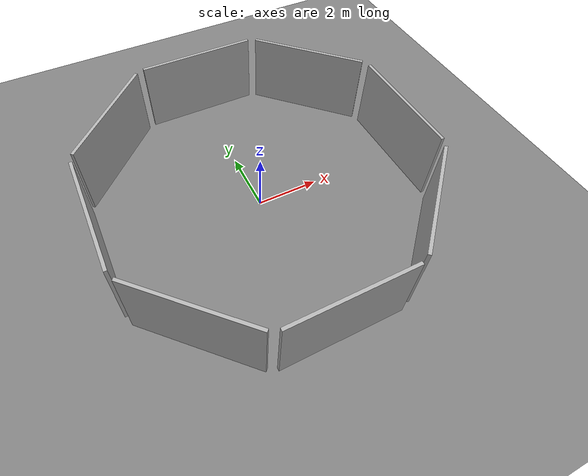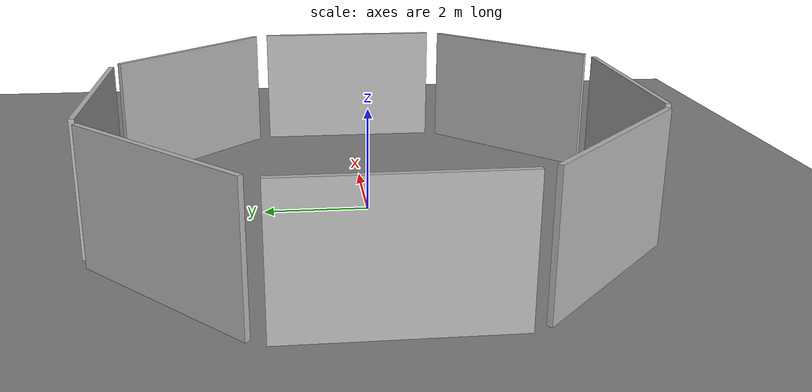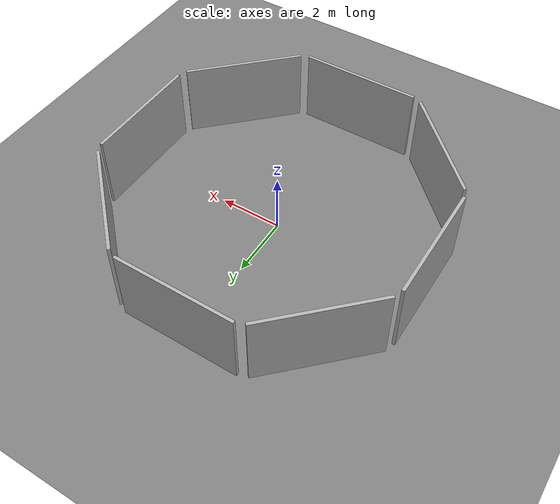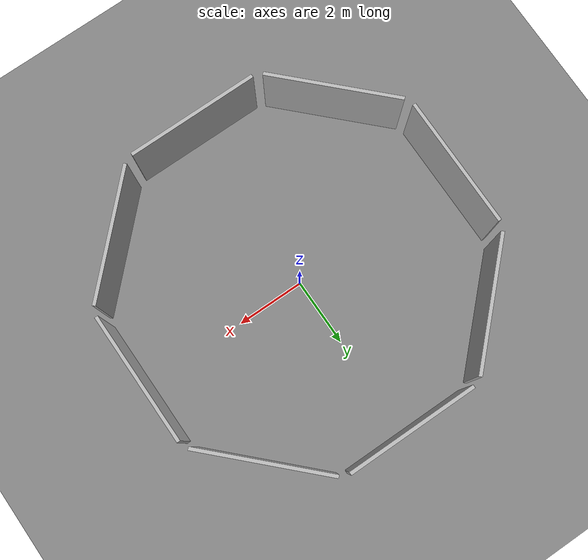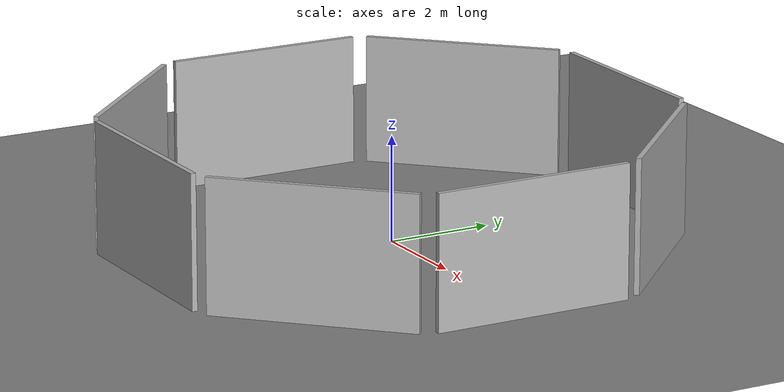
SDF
<?xml version="1.0" ?>
<sdf version="1.6">
  <world name="octagonal_room_world">
    <include>
      <uri>model://sun</uri>
    </include>
    <include>
      <uri>model://ground_plane</uri>
    </include>

    <model name="octagonal_room">
      <static>true</static>

      <!-- Floor -->
      <link name="floor">
        <collision name="floor_collision">
          <geometry>
            <plane>
              <normal>0 0 1</normal>
              <size>20 20</size>
            </plane>
          </geometry>
        </collision>
        <visual name="floor_visual">
          <geometry>
            <plane>
              <normal>0 0 1</normal>
              <size>20 20</size>
            </plane>
          </geometry>
          <material>
            <ambient>0.5 0.5 0.5 1</ambient>
            <diffuse>0.5 0.5 0.5 1</diffuse>
          </material>
        </visual>
      </link>

      <!-- Wall dimensions -->
      <!-- Length: 3.83 meters (approximate side length for an octagon with a radius of 5m) -->
      <!-- Height: 2.5 meters -->
      <!-- Thickness: 0.1 meters -->
      <!-- Calculated positions and orientations for each wall -->
      <!-- Walls are numbered from wall_1 to wall_8 -->

      <!-- Wall 1 -->
      <link name="wall_1">
        <pose>5 0 1.25 0 0 0</pose>
        <collision name="collision">
          <geometry>
            <box>
              <size>0.1 3.83 2.5</size>
            </box>
          </geometry>
        </collision>
        <visual name="visual">
          <geometry>
            <box>
              <size>0.1 3.83 2.5</size>
            </box>
          </geometry>
          <material>
            <ambient>0.7 0.7 0.7 1</ambient>
            <diffuse>0.7 0.7 0.7 1</diffuse>
          </material>
        </visual>
      </link>

      <!-- Wall 2 -->
      <link name="wall_2">
        <pose>3.54 3.54 1.25 0 0 0.785398</pose>
        <collision name="collision">
          <geometry>
            <box>
              <size>0.1 3.83 2.5</size>
            </box>
          </geometry>
        </collision>
        <visual name="visual">
          <geometry>
            <box>
              <size>0.1 3.83 2.5</size>
            </box>
          </geometry>
          <material>
            <ambient>0.7 0.7 0.7 1</ambient>
            <diffuse>0.7 0.7 0.7 1</diffuse>
          </material>
        </visual>
      </link>

      <!-- Wall 3 -->
      <link name="wall_3">
        <pose>0 5 1.25 0 0 1.5708</pose>
        <collision name="collision">
          <geometry>
            <box>
              <size>0.1 3.83 2.5</size>
            </box>
          </geometry>
        </collision>
        <visual name="visual">
          <geometry>
            <box>
              <size>0.1 3.83 2.5</size>
            </box>
          </geometry>
          <material>
            <ambient>0.7 0.7 0.7 1</ambient>
            <diffuse>0.7 0.7 0.7 1</diffuse>
          </material>
        </visual>
      </link>

      <!-- Wall 4 -->
      <link name="wall_4">
        <pose>-3.54 3.54 1.25 0 0 2.35619</pose>
        <collision name="collision">
          <geometry>
            <box>
              <size>0.1 3.83 2.5</size>
            </box>
          </geometry>
        </collision>
        <visual name="visual">
          <geometry>
            <box>
              <size>0.1 3.83 2.5</size>
            </box>
          </geometry>
          <material>
            <ambient>0.7 0.7 0.7 1</ambient>
            <diffuse>0.7 0.7 0.7 1</diffuse>
          </material>
        </visual>
      </link>

      <!-- Wall 5 -->
      <link name="wall_5">
        <pose>-5 0 1.25 0 0 3.14159</pose>
        <collision name="collision">
          <geometry>
            <box>
              <size>0.1 3.83 2.5</size>
            </box>
          </geometry>
        </collision>
        <visual name="visual">
          <geometry>
            <box>
              <size>0.1 3.83 2.5</size>
            </box>
          </geometry>
          <material>
            <ambient>0.7 0.7 0.7 1</ambient>
            <diffuse>0.7 0.7 0.7 1</diffuse>
          </material>
        </visual>
      </link>

      <!-- Wall 6 -->
      <link name="wall_6">
        <pose>-3.54 -3.54 1.25 0 0 -2.35619</pose>
        <collision name="collision">
          <geometry>
            <box>
              <size>0.1 3.83 2.5</size>
            </box>
          </geometry>
        </collision>
        <visual name="visual">
          <geometry>
            <box>
              <size>0.1 3.83 2.5</size>
            </box>
          </geometry>
          <material>
            <ambient>0.7 0.7 0.7 1</ambient>
            <diffuse>0.7 0.7 0.7 1</diffuse>
          </material>
        </visual>
      </link>

      <!-- Wall 7 -->
      <link name="wall_7">
        <pose>0 -5 1.25 0 0 -1.5708</pose>
        <collision name="collision">
          <geometry>
            <box>
              <size>0.1 3.83 2.5</size>
            </box>
          </geometry>
        </collision>
        <visual name="visual">
          <geometry>
            <box>
              <size>0.1 3.83 2.5</size>
            </box>
          </geometry>
          <material>
            <ambient>0.7 0.7 0.7 1</ambient>
            <diffuse>0.7 0.7 0.7 1</diffuse>
          </material>
        </visual>
      </link>

      <!-- Wall 8 -->
      <link name="wall_8">
        <pose>3.54 -3.54 1.25 0 0 -0.785398</pose>
        <collision name="collision">
          <geometry>
            <box>
              <size>0.1 3.83 2.5</size>
            </box>
          </geometry>
        </collision>
        <visual name="visual">
          <geometry>
            <box>
              <size>0.1 3.83 2.5</size>
            </box>
          </geometry>
          <material>
            <ambient>0.7 0.7 0.7 1</ambient>
            <diffuse>0.7 0.7 0.7 1</diffuse>
          </material>
        </visual>
      </link>
    </model>
  </world>
</sdf>
